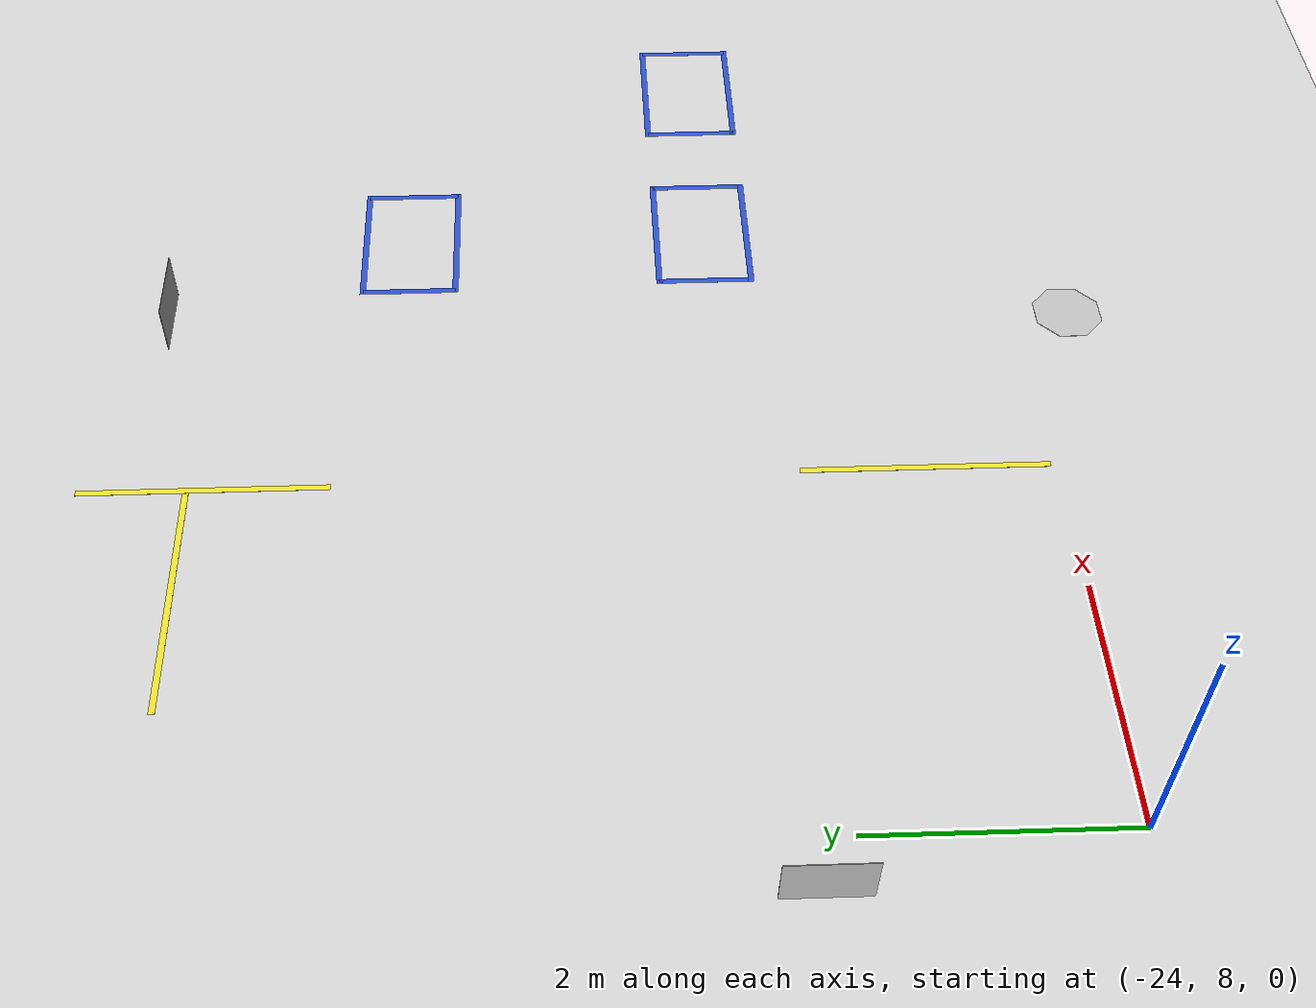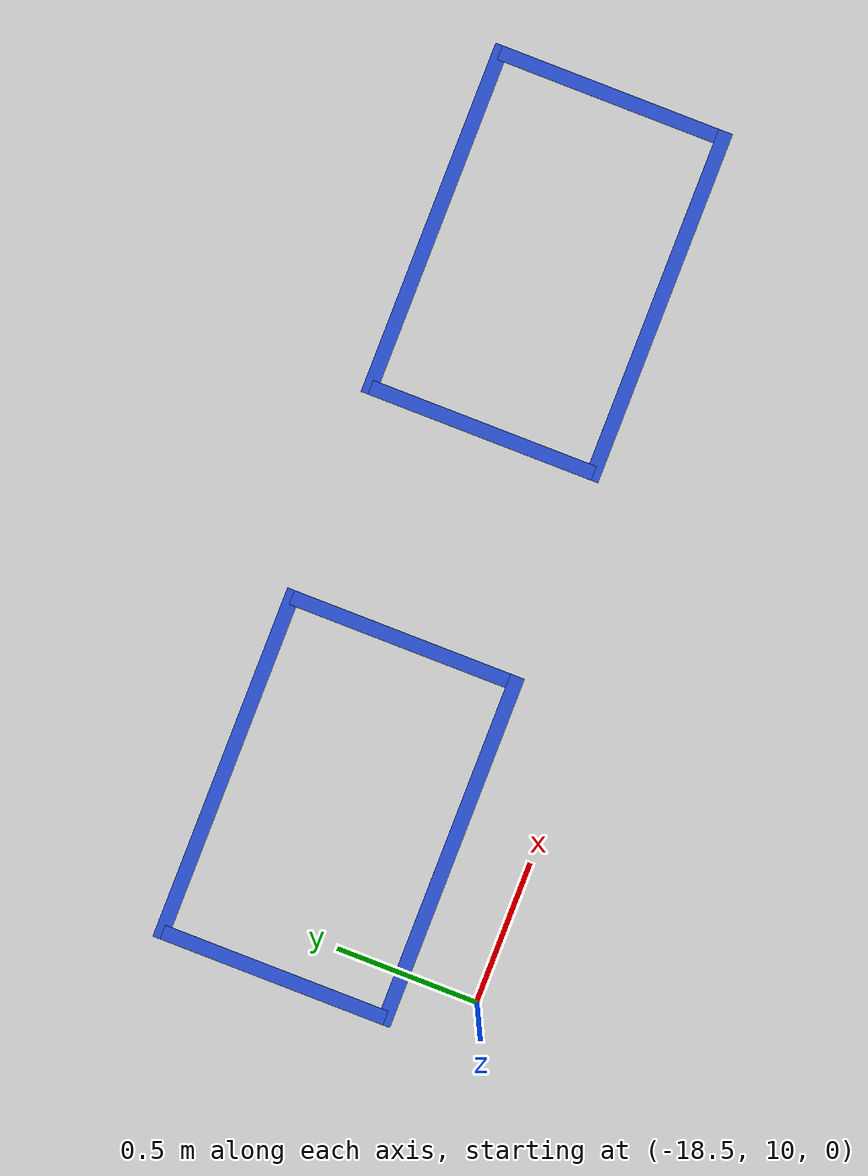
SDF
<sdf version="1.6">
 <world name="default">
  <model name="ground_plane">
   <static>1</static>
   <link name="link">
    <collision name="collision">
     <geometry><plane><normal>0 0 1</normal><size>100 100</size></plane></geometry>
     <surface><friction><ode><mu>100</mu><mu2>50</mu2></ode></friction></surface>
    </collision>
    <visual name="visual">
     <cast_shadows>0</cast_shadows>
     <geometry><plane><normal>0 0 1</normal><size>100 100</size></plane></geometry>
     <material>
      <script><uri>file://media/materials/scripts/gazebo.material</uri><name>Gazebo/Grey</name></script>
     </material>
    </visual>
   </link>
  </model>
  <model name="line2m">
   <link name="link_0">
    <inertial>
     <mass>1</mass>
     <inertia>
      <ixx>0.166667</ixx>
      <ixy>0</ixy>
      <ixz>0</ixz>
      <iyy>0.166667</iyy>
      <iyz>0</iyz>
      <izz>0.166667</izz>
     </inertia>
    </inertial>
    <visual name="visual">
     <geometry><box><size>2 0.05 0.001</size></box></geometry>
     <material>
      <lighting>1</lighting>
      <script><uri>file://media/materials/scripts/gazebo.material</uri><name>Gazebo/Yellow</name></script>
     </material>
    </visual>
   </link>
   <static>1</static>
   <pose>-21.8772 14.9028 0 0 -0 0</pose>
  </model>
  <model name="line2m_0">
   <link name="link_0">
    <inertial>
     <mass>1</mass>
     <inertia>
      <ixx>0.166667</ixx>
      <ixy>0</ixy>
      <ixz>0</ixz>
      <iyy>0.166667</iyy>
      <iyz>0</iyz>
      <izz>0.166667</izz>
     </inertia>
    </inertial>
    <visual name="visual">
     <geometry><box><size>2 0.05 0.001</size></box></geometry>
     <material>
      <lighting>1</lighting>
      <script><uri>file://media/materials/scripts/gazebo.material</uri><name>Gazebo/Yellow</name></script>
     </material>
    </visual>
   </link>
   <static>1</static>
   <pose>-20.8518 14.7675 0 0 -0 1.5708</pose>
  </model>
  <model name="line2m_2">
   <link name="link_0">
    <inertial>
     <mass>1</mass>
     <inertia>
      <ixx>0.166667</ixx>
      <ixy>0</ixy>
      <ixz>0</ixz>
      <iyy>0.166667</iyy>
      <iyz>0</iyz>
      <izz>0.166667</izz>
     </inertia>
    </inertial>
    <visual name="visual">
     <geometry><box><size>2 0.05 0.001</size></box></geometry>
     <material>
      <lighting>1</lighting>
      <script><uri>file://media/materials/scripts/gazebo.material</uri><name>Gazebo/Yellow</name></script>
     </material>
    </visual>
   </link>
   <static>1</static>
   <pose>-20.805 9.06119 0 0 -0 1.5708</pose>
  </model>
  <model name="stopSign_0">
   <link name="link_0">
    <inertial>
     <mass>1</mass>
     <inertia><ixx>0.145833</ixx><ixy>0</ixy><ixz>0</ixz><iyy>0.145833</iyy><iyz>0</iyz><izz>0.125</izz></inertia>
    </inertial>
    <visual name="visual">
     <geometry><mesh><uri>model://stopSign/model/model.dae</uri><scale>1 1 0.1</scale></mesh></geometry>
     <material><lighting>1</lighting></material>
    </visual>
   </link>
   <static>1</static>
   <pose>-18.8691 7.32184 0 0 -0 1.5708</pose>
  </model>
  <model name="60x45sign_agv">
   <link name="link_0">
    <inertial>
     <mass>1</mass>
     <inertia>
      <ixx>0.166667</ixx>
      <ixy>0</ixy>
      <ixz>0</ixz>
      <iyy>0.166667</iyy>
      <iyz>0</iyz>
      <izz>0.166667</izz>
     </inertia>
    </inertial>
    <visual name="visual">
     <pose>-0.3 0 -0.225 0 -0 0</pose>
     <geometry><mesh><uri>model://60x45sign_agv/model/model.dae</uri><scale>2 2 2</scale></mesh></geometry>
     <material><lighting>1</lighting></material>
    </visual>
    <collision name="collision">
     <geometry><box><size>0.6 0.005 0.45</size></box></geometry>
     <surface>
      <friction>
       <ode><mu>1</mu><mu2>1</mu2><fdir1>0 0 0</fdir1><slip1>0</slip1><slip2>0</slip2></ode>
       <torsional>
        <coefficient>1</coefficient>
        <patch_radius>0</patch_radius>
        <surface_radius>0</surface_radius>
        <use_patch_radius>1</use_patch_radius>
        <ode><slip>0</slip></ode>
       </torsional>
      </friction>
      <bounce><restitution_coefficient>0</restitution_coefficient><threshold>1e+06</threshold></bounce>
      <contact>
       <collide_without_contact>0</collide_without_contact>
       <collide_without_contact_bitmask>1</collide_without_contact_bitmask>
       <collide_bitmask>1</collide_bitmask>
       <ode>
        <soft_cfm>0</soft_cfm>
        <soft_erp>0.2</soft_erp>
        <kp>1e+13</kp>
        <kd>1</kd>
        <max_vel>0.01</max_vel>
        <min_depth>0</min_depth>
       </ode>
       <bullet>
        <split_impulse>1</split_impulse>
        <split_impulse_penetration_threshold>-0.01</split_impulse_penetration_threshold>
        <soft_cfm>0</soft_cfm>
        <soft_erp>0.2</soft_erp>
        <kp>1e+13</kp>
        <kd>1</kd>
       </bullet>
      </contact>
     </surface>
    </collision>
   </link>
   <static>1</static>
   <pose>-24.93 10.402 1.25 0 -0 1.5708</pose>
  </model>
  <model name="60x45sign">
   <link name="link_0">
    <inertial>
     <mass>1</mass>
     <inertia>
      <ixx>0.166667</ixx>
      <ixy>0</ixy>
      <ixz>0</ixz>
      <iyy>0.166667</iyy>
      <iyz>0</iyz>
      <izz>0.166667</izz>
     </inertia>
    </inertial>
    <visual name="visual">
     <pose>-0.3 0 -0.225 0 -0 0</pose>
     <geometry><mesh><uri>model://60x45sign/model/model.dae</uri><scale>2 1 2</scale></mesh></geometry>
     <material><lighting>1</lighting></material>
    </visual>
    <collision name="collision">
     <geometry><box><size>0.6 0.005 0.45</size></box></geometry>
     <surface>
      <friction>
       <ode><mu>1</mu><mu2>1</mu2><fdir1>0 0 0</fdir1><slip1>0</slip1><slip2>0</slip2></ode>
       <torsional>
        <coefficient>1</coefficient>
        <patch_radius>0</patch_radius>
        <surface_radius>0</surface_radius>
        <use_patch_radius>1</use_patch_radius>
        <ode><slip>0</slip></ode>
       </torsional>
      </friction>
      <bounce><restitution_coefficient>0</restitution_coefficient><threshold>1e+06</threshold></bounce>
      <contact>
       <collide_without_contact>0</collide_without_contact>
       <collide_without_contact_bitmask>1</collide_without_contact_bitmask>
       <collide_bitmask>1</collide_bitmask>
       <ode>
        <soft_cfm>0</soft_cfm>
        <soft_erp>0.2</soft_erp>
        <kp>1e+13</kp>
        <kd>1</kd>
        <max_vel>0.01</max_vel>
        <min_depth>0</min_depth>
       </ode>
       <bullet>
        <split_impulse>1</split_impulse>
        <split_impulse_penetration_threshold>-0.01</split_impulse_penetration_threshold>
        <soft_cfm>0</soft_cfm>
        <soft_erp>0.2</soft_erp>
        <kp>1e+13</kp>
        <kd>1</kd>
       </bullet>
      </contact>
     </surface>
    </collision>
   </link>
   <static>1</static>
   <pose>-20 14.925 1.25 0 -0 0</pose>
  </model>
  <model name="waitSpot_0">
   <link name="link_4">
    <inertial>
     <mass>1</mass>
     <inertia>
      <ixx>0.166667</ixx>
      <ixy>0</ixy>
      <ixz>0</ixz>
      <iyy>0.166667</iyy>
      <iyz>0</iyz>
      <izz>0.166667</izz>
     </inertia>
    </inertial>
    <visual name="ModelPreview_8::link_4::visual_3">
     <pose>-0.6 0 0 0 -0 0</pose>
     <geometry><box><size>0.05 0.8 0.0001</size></box></geometry>
     <material>
      <lighting>1</lighting>
      <script><uri>file://media/materials/scripts/gazebo.material</uri><name>Gazebo/Blue</name></script>
     </material>
    </visual>
    <visual name="ModelPreview_8::link_4::visual_1">
     <pose>0 -0.4 0 0 -0 0</pose>
     <geometry><box><size>1.25 0.05 0.0001</size></box></geometry>
     <material>
      <lighting>1</lighting>
      <script><uri>file://media/materials/scripts/gazebo.material</uri><name>Gazebo/Blue</name></script>
     </material>
    </visual>
    <visual name="ModelPreview_8::link_4::visual_2">
     <pose>0.6 0 0 0 -0 0</pose>
     <geometry><box><size>0.05 0.8 0.0001</size></box></geometry>
     <material>
      <lighting>1</lighting>
      <script><uri>file://media/materials/scripts/gazebo.material</uri><name>Gazebo/Blue</name></script>
     </material>
    </visual>
    <visual name="visual">
     <pose>0 0.4 0 0 -0 0</pose>
     <geometry><box><size>1.25 0.05 0.0001</size></box></geometry>
     <material>
      <lighting>1</lighting>
      <script><uri>file://media/materials/scripts/gazebo.material</uri><name>Gazebo/Blue</name></script>
     </material>
    </visual>
   </link>
   <static>1</static>
   <pose>-18.1068 13.237 0 0 -0 0</pose>
  </model>
  <model name="waitSpot_14">
   <link name="link_4">
    <inertial>
     <mass>1</mass>
     <inertia>
      <ixx>0.166667</ixx>
      <ixy>0</ixy>
      <ixz>0</ixz>
      <iyy>0.166667</iyy>
      <iyz>0</iyz>
      <izz>0.166667</izz>
     </inertia>
    </inertial>
    <visual name="ModelPreview_8::link_4::visual_3">
     <pose>-0.6 0 0 0 -0 0</pose>
     <geometry><box><size>0.05 0.8 0.0001</size></box></geometry>
     <material>
      <lighting>1</lighting>
      <script><uri>file://media/materials/scripts/gazebo.material</uri><name>Gazebo/Blue</name></script>
     </material>
    </visual>
    <visual name="ModelPreview_8::link_4::visual_1">
     <pose>0 -0.4 0 0 -0 0</pose>
     <geometry><box><size>1.25 0.05 0.0001</size></box></geometry>
     <material>
      <lighting>1</lighting>
      <script><uri>file://media/materials/scripts/gazebo.material</uri><name>Gazebo/Blue</name></script>
     </material>
    </visual>
    <visual name="ModelPreview_8::link_4::visual_2">
     <pose>0.6 0 0 0 -0 0</pose>
     <geometry><box><size>0.05 0.8 0.0001</size></box></geometry>
     <material>
      <lighting>1</lighting>
      <script><uri>file://media/materials/scripts/gazebo.material</uri><name>Gazebo/Blue</name></script>
     </material>
    </visual>
    <visual name="visual">
     <pose>0 0.4 0 0 -0 0</pose>
     <geometry><box><size>1.25 0.05 0.0001</size></box></geometry>
     <material>
      <lighting>1</lighting>
      <script><uri>file://media/materials/scripts/gazebo.material</uri><name>Gazebo/Blue</name></script>
     </material>
    </visual>
   </link>
   <static>1</static>
   <pose>-16.1066 10.6741 0 0 -0 0</pose>
  </model>
  <model name="waitSpot_15">
   <link name="link_4">
    <inertial>
     <mass>1</mass>
     <inertia>
      <ixx>0.166667</ixx>
      <ixy>0</ixy>
      <ixz>0</ixz>
      <iyy>0.166667</iyy>
      <iyz>0</iyz>
      <izz>0.166667</izz>
     </inertia>
    </inertial>
    <visual name="ModelPreview_8::link_4::visual_3">
     <pose>-0.6 0 0 0 -0 0</pose>
     <geometry><box><size>0.05 0.8 0.0001</size></box></geometry>
     <material>
      <lighting>1</lighting>
      <script><uri>file://media/materials/scripts/gazebo.material</uri><name>Gazebo/Blue</name></script>
     </material>
    </visual>
    <visual name="ModelPreview_8::link_4::visual_1">
     <pose>0 -0.4 0 0 -0 0</pose>
     <geometry><box><size>1.25 0.05 0.0001</size></box></geometry>
     <material>
      <lighting>1</lighting>
      <script><uri>file://media/materials/scripts/gazebo.material</uri><name>Gazebo/Blue</name></script>
     </material>
    </visual>
    <visual name="ModelPreview_8::link_4::visual_2">
     <pose>0.6 0 0 0 -0 0</pose>
     <geometry><box><size>0.05 0.8 0.0001</size></box></geometry>
     <material>
      <lighting>1</lighting>
      <script><uri>file://media/materials/scripts/gazebo.material</uri><name>Gazebo/Blue</name></script>
     </material>
    </visual>
    <visual name="visual">
     <pose>0 0.4 0 0 -0 0</pose>
     <geometry><box><size>1.25 0.05 0.0001</size></box></geometry>
     <material>
      <lighting>1</lighting>
      <script><uri>file://media/materials/scripts/gazebo.material</uri><name>Gazebo/Blue</name></script>
     </material>
    </visual>
   </link>
   <static>1</static>
   <pose>-18.0572 10.6665 0 0 -0 0</pose>
  </model>
 </world>
</sdf>
